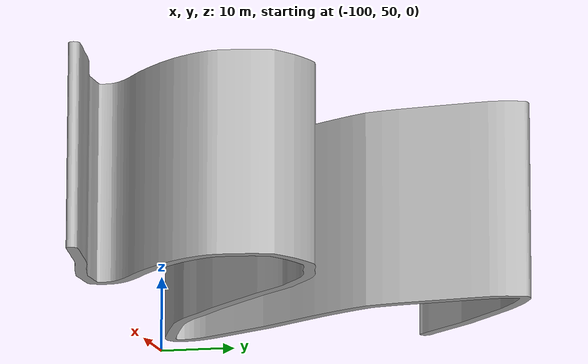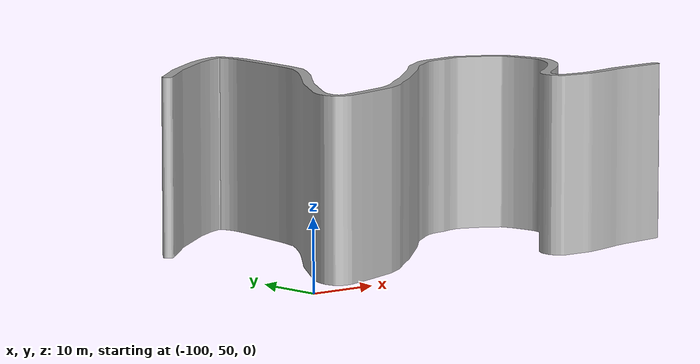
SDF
<?xml version='1.0'?>
<sdf version='1.6'>
	<model name='random_wall'>

		<static>true</static>

		<link name='link'>
			<visual name='visual'>
				<geometry>
					<mesh>
						<uri>model://random_wall/meshes/small_random_wall.stl</uri>
					</mesh>
				</geometry>
				<material>
					<script>
						<uri>model://random_wall/materials/scripts</uri>
						<uri>model://random_wall/materials/textures</uri>
						<name>vrc/concrete</name>
					</script>
				</material>
			</visual>
			<collision name='collision'>
				<geometry>
					<mesh>
						<uri>model://random_wall/meshes/small_random_wall.stl</uri>
					</mesh>
				</geometry>
				<material>
					<script>
						<uri>model://random_wall/materials/scripts</uri>
						<uri>model://random_wall/materials/textures</uri>
						<name>vrc/concrete</name>
					</script>
				</material>
			</collision>
		</link>
	</model>
</sdf>
